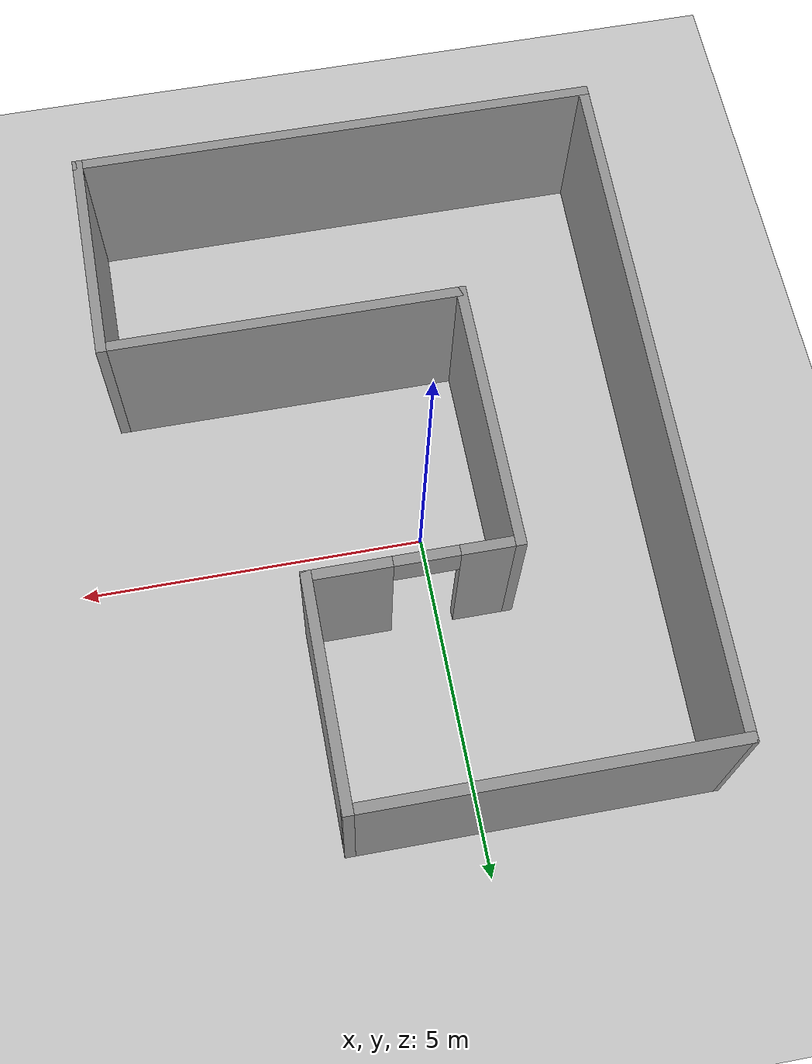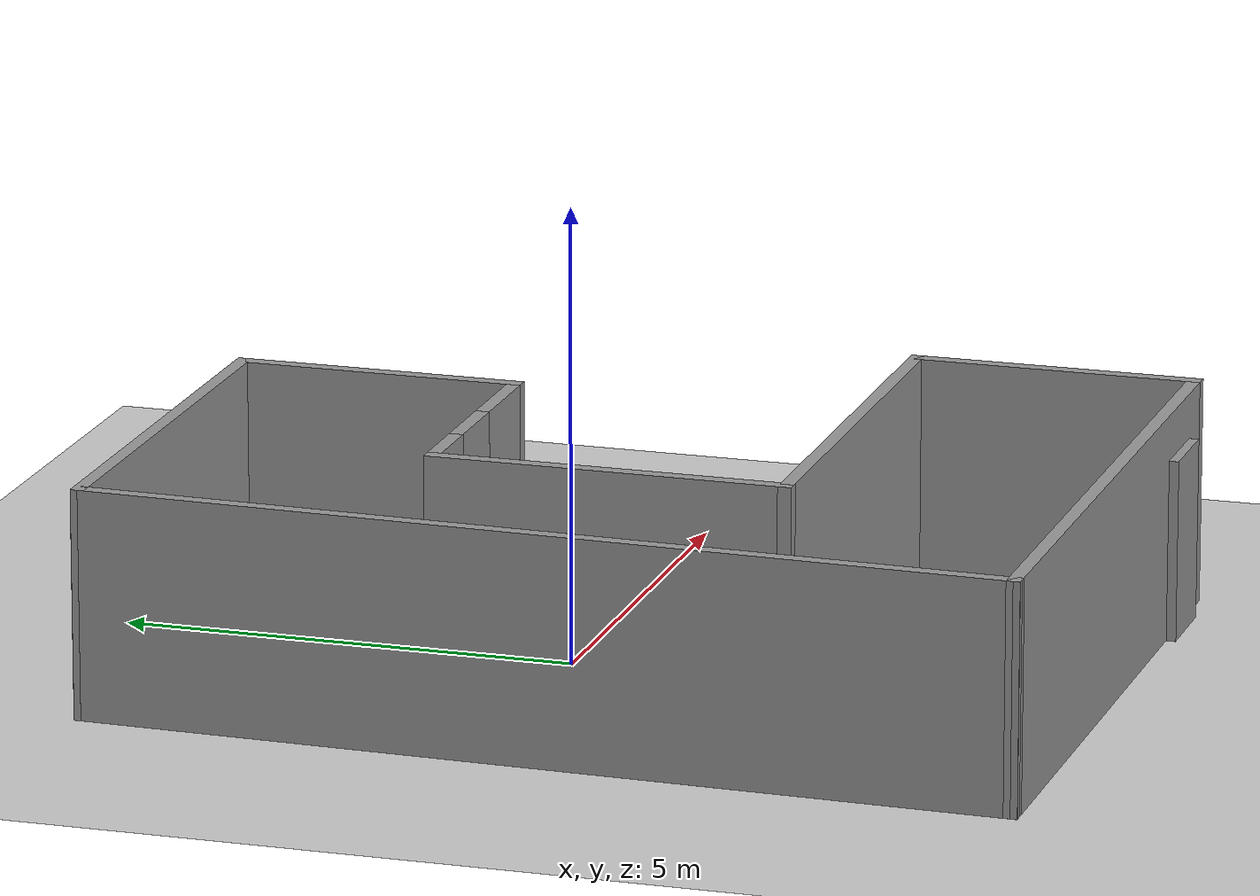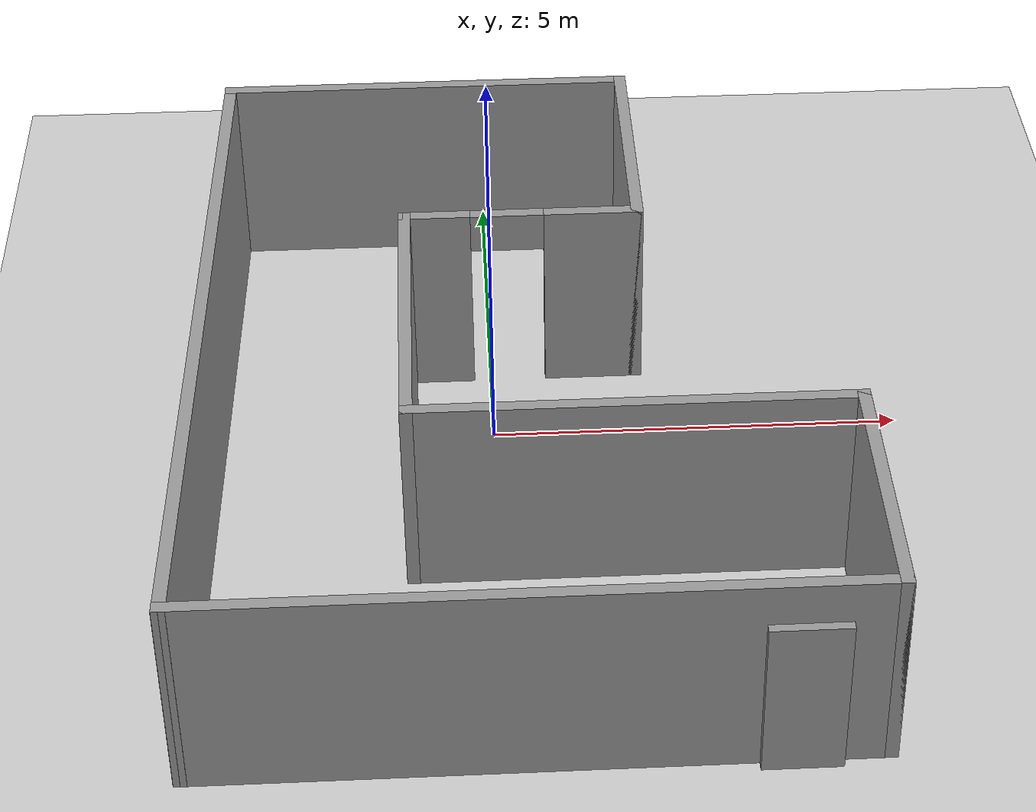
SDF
<sdf version="1.7">
 <world name="default">
  <model name="ground_plane">
   <static>1</static>
   <link name="link">
    <collision name="collision">
     <geometry><plane><normal>0 0 1</normal><size>100 100</size></plane></geometry>
     <surface><friction><ode><mu>100</mu><mu2>50</mu2></ode></friction></surface>
    </collision>
    <visual name="visual">
     <cast_shadows>0</cast_shadows>
     <geometry><plane><normal>0 0 1</normal><size>100 100</size></plane></geometry>
     <material>
      <script><uri>file://media/materials/scripts/gazebo.material</uri><name>Gazebo/Grey</name></script>
     </material>
    </visual>
   </link>
  </model>
  <light name="sun" type="directional">
   <pose>0 0 10 0 -0 0</pose>
   <diffuse>0.8 0.8 0.8 1</diffuse>
   <specular>0.2 0.2 0.2 1</specular>
   <attenuation>
    <range>1000</range>
    <constant>0.9</constant>
    <linear>0.01</linear>
    <quadratic>0.001</quadratic>
   </attenuation>
   <direction>-0.5 0.1 -0.9</direction>
   <spot><inner_angle>0</inner_angle><outer_angle>0</outer_angle><falloff>0</falloff></spot>
  </light>
  <scene><shadows>0</shadows><ambient>0.4 0.4 0.4 1</ambient><background>0.7 0.7 0.7 1</background></scene>
  <physics type="ode">
   <real_time_update_rate>1000</real_time_update_rate>
   <max_step_size>0.001</max_step_size>
   <real_time_factor>1</real_time_factor>
   <ode>
    <solver>
     <type>quick</type>
     <iters>150</iters>
     <precon_iters>0</precon_iters>
     <sor>1.4</sor>
     <use_dynamic_moi_rescaling>1</use_dynamic_moi_rescaling>
    </solver>
    <constraints>
     <cfm>1e-05</cfm>
     <erp>0.2</erp>
     <contact_max_correcting_vel>2000</contact_max_correcting_vel>
     <contact_surface_layer>0.01</contact_surface_layer>
    </constraints>
   </ode>
  </physics>
  <gravity>0 0 -9.8</gravity>
  <magnetic_field>6e-06 2.3e-05 -4.2e-05</magnetic_field>
  <atmosphere type="adiabatic"/>
  <audio><device>default</device></audio>
  <spherical_coordinates>
   <surface_model>EARTH_WGS84</surface_model>
   <latitude_deg>0</latitude_deg>
   <longitude_deg>0</longitude_deg>
   <elevation>0</elevation>
   <heading_deg>0</heading_deg>
  </spherical_coordinates>
  <model name="house3">
   <pose>0.279079 -0.725 0 0 -0 0</pose>
   <link name="Door_1">
    <collision name="Door_1_Collision">
     <geometry><box><size>0.9 0.17 2</size></box></geometry>
     <pose>0 0 1 0 -0 0</pose>
    </collision>
    <visual name="Door_1_Visual">
     <pose>0 0 1 0 -0 0</pose>
     <geometry><box><size>0.9 0.17 2</size></box></geometry>
     <material>
      <script><uri>file://media/materials/scripts/gazebo.material</uri><name>Gazebo/Grey</name></script>
     </material>
    </visual>
    <pose>2.83011 -5.12067 0 0 -0 0</pose>
   </link>
   <link name="Wall_0">
    <collision name="Wall_0_Collision">
     <geometry><box><size>7.75 0.15 2.5</size></box></geometry>
     <pose>0 0 1.25 0 -0 0</pose>
    </collision>
    <visual name="Wall_0_Visual">
     <pose>0 0 1.25 0 -0 0</pose>
     <geometry><box><size>7.75 0.15 2.5</size></box></geometry>
     <material>
      <script><uri>file://media/materials/scripts/gazebo.material</uri><name>Gazebo/Grey</name></script>
      <ambient>1 1 1 1</ambient>
     </material>
     <meta><layer>0</layer></meta>
    </visual>
    <pose>0.000921 -5.025 0 0 -0 0</pose>
   </link>
   <link name="Wall_1">
    <collision name="Wall_1_Collision">
     <geometry><box><size>3.25 0.15 2.5</size></box></geometry>
     <pose>0 0 1.25 0 -0 0</pose>
    </collision>
    <visual name="Wall_1_Visual">
     <pose>0 0 1.25 0 -0 0</pose>
     <geometry><box><size>3.25 0.15 2.5</size></box></geometry>
     <material>
      <script><uri>file://media/materials/scripts/gazebo.material</uri><name>Gazebo/Grey</name></script>
      <ambient>1 1 1 1</ambient>
     </material>
     <meta><layer>0</layer></meta>
    </visual>
    <pose>3.80092 -3.475 0 0 -0 1.5708</pose>
   </link>
   <link name="Wall_2">
    <collision name="Wall_2_Collision">
     <geometry><box><size>5.25 0.15 2.5</size></box></geometry>
     <pose>0 0 1.25 0 -0 0</pose>
    </collision>
    <visual name="Wall_2_Visual">
     <pose>0 0 1.25 0 -0 0</pose>
     <geometry><box><size>5.25 0.15 2.5</size></box></geometry>
     <material>
      <script><uri>file://media/materials/scripts/gazebo.material</uri><name>Gazebo/Grey</name></script>
      <ambient>1 1 1 1</ambient>
     </material>
     <meta><layer>0</layer></meta>
    </visual>
    <pose>1.25092 -1.925 0 0 -0 3.14159</pose>
   </link>
   <link name="Wall_3">
    <collision name="Wall_3_Collision">
     <geometry><box><size>4 0.15 2.5</size></box></geometry>
     <pose>0 0 1.25 0 -0 0</pose>
    </collision>
    <visual name="Wall_3_Visual">
     <pose>0 0 1.25 0 -0 0</pose>
     <geometry><box><size>4 0.15 2.5</size></box></geometry>
     <material>
      <script><uri>file://media/materials/scripts/gazebo.material</uri><name>Gazebo/Grey</name></script>
      <ambient>1 1 1 1</ambient>
     </material>
     <meta><layer>0</layer></meta>
    </visual>
    <pose>-1.29908 -0 0 0 -0 1.5708</pose>
   </link>
   <link name="Wall_4">
    <pose>0.125921 1.925 0 0 -0 0</pose>
    <visual name="Wall_4_Visual_0">
     <pose>-1.06102 0 1.25 0 -0 0</pose>
     <geometry><box><size>0.877953 0.15 2.5</size></box></geometry>
     <material>
      <script><uri>file://media/materials/scripts/gazebo.material</uri><name>Gazebo/Grey</name></script>
      <ambient>1 1 1 1</ambient>
     </material>
     <meta><layer>0</layer></meta>
    </visual>
    <collision name="Wall_4_Collision_0">
     <geometry><box><size>0.877953 0.15 2.5</size></box></geometry>
     <pose>-1.06102 0 1.25 0 -0 0</pose>
    </collision>
    <visual name="Wall_4_Visual_1">
     <pose>0.888976 0 1.25 0 -0 0</pose>
     <geometry><box><size>1.22205 0.15 2.5</size></box></geometry>
     <material>
      <script><uri>file://media/materials/scripts/gazebo.material</uri><name>Gazebo/Grey</name></script>
      <ambient>1 1 1 1</ambient>
     </material>
     <meta><layer>0</layer></meta>
    </visual>
    <collision name="Wall_4_Collision_1">
     <geometry><box><size>1.22205 0.15 2.5</size></box></geometry>
     <pose>0.888976 0 1.25 0 -0 0</pose>
    </collision>
    <visual name="Wall_4_Visual_2">
     <pose>-0.172047 0 2.25 0 -0 0</pose>
     <geometry><box><size>0.9 0.15 0.5</size></box></geometry>
     <material>
      <script><uri>file://media/materials/scripts/gazebo.material</uri><name>Gazebo/Grey</name></script>
      <ambient>1 1 1 1</ambient>
     </material>
     <meta><layer>0</layer></meta>
    </visual>
    <collision name="Wall_4_Collision_2">
     <geometry><box><size>0.9 0.15 0.5</size></box></geometry>
     <pose>-0.172047 0 2.25 0 -0 0</pose>
    </collision>
   </link>
   <link name="Wall_5">
    <collision name="Wall_5_Collision">
     <geometry><box><size>3.25 0.15 2.5</size></box></geometry>
     <pose>0 0 1.25 0 -0 0</pose>
    </collision>
    <visual name="Wall_5_Visual">
     <pose>0 0 1.25 0 -0 0</pose>
     <geometry><box><size>3.25 0.15 2.5</size></box></geometry>
     <material>
      <script><uri>file://media/materials/scripts/gazebo.material</uri><name>Gazebo/Grey</name></script>
      <ambient>1 1 1 1</ambient>
     </material>
     <meta><layer>0</layer></meta>
    </visual>
    <pose>1.55092 3.475 0 0 -0 1.5708</pose>
   </link>
   <link name="Wall_6">
    <collision name="Wall_6_Collision">
     <geometry><box><size>5.25 0.15 2.5</size></box></geometry>
     <pose>0 0 1.25 0 -0 0</pose>
    </collision>
    <visual name="Wall_6_Visual">
     <pose>0 0 1.25 0 -0 0</pose>
     <geometry><box><size>5.25 0.15 2.5</size></box></geometry>
     <material>
      <script><uri>file://media/materials/scripts/gazebo.material</uri><name>Gazebo/Grey</name></script>
      <ambient>1 1 1 1</ambient>
     </material>
     <meta><layer>0</layer></meta>
    </visual>
    <pose>-0.999079 5.025 0 0 -0 3.14159</pose>
   </link>
   <link name="Wall_7">
    <collision name="Wall_7_Collision">
     <geometry><box><size>10.2031 0.15 2.5</size></box></geometry>
     <pose>0 0 1.25 0 -0 0</pose>
    </collision>
    <visual name="Wall_7_Visual">
     <pose>0 0 1.25 0 -0 0</pose>
     <geometry><box><size>10.2031 0.15 2.5</size></box></geometry>
     <material>
      <script><uri>file://media/materials/scripts/gazebo.material</uri><name>Gazebo/Grey</name></script>
      <ambient>1 1 1 1</ambient>
     </material>
     <meta><layer>0</layer></meta>
    </visual>
    <pose>-3.67408 -0 0 0 -0 -1.59567</pose>
   </link>
   <static>1</static>
  </model>
 </world>
</sdf>
